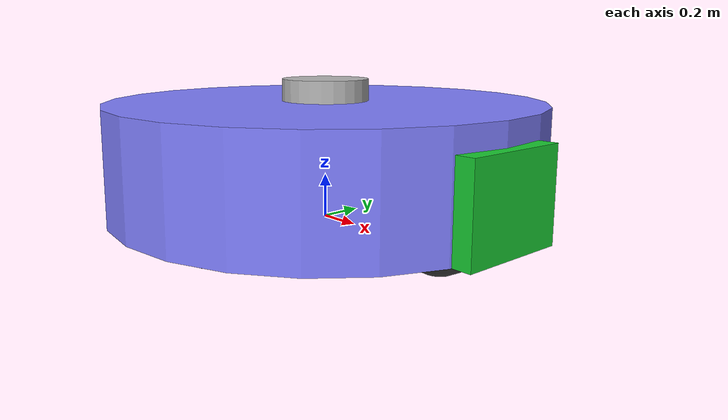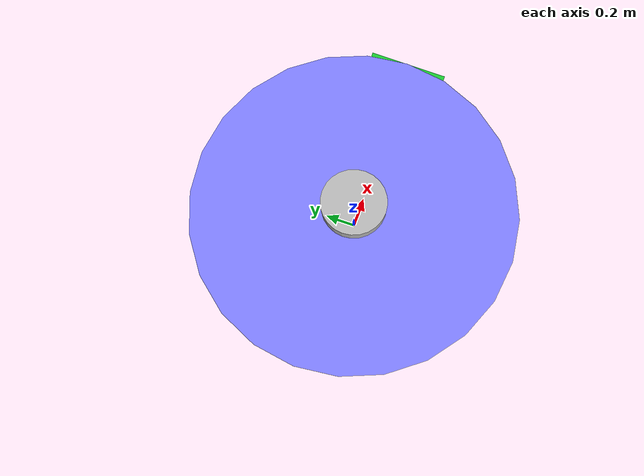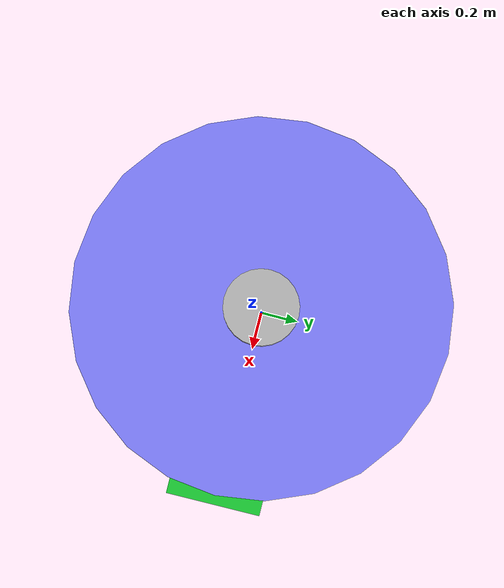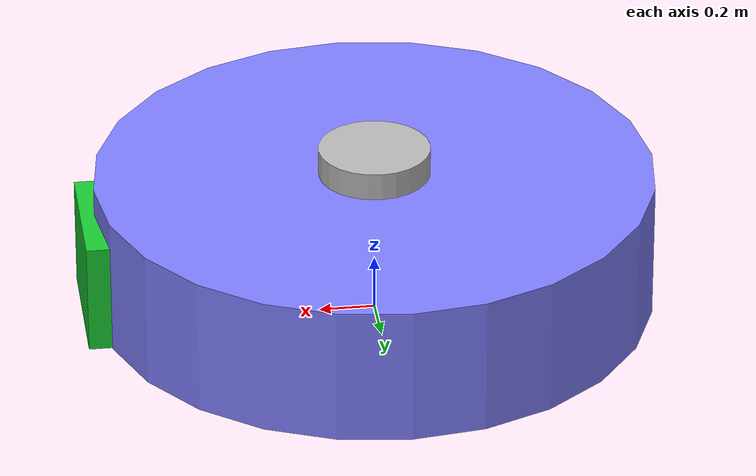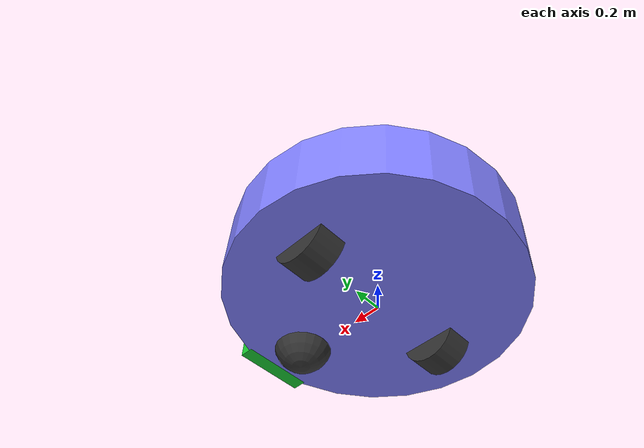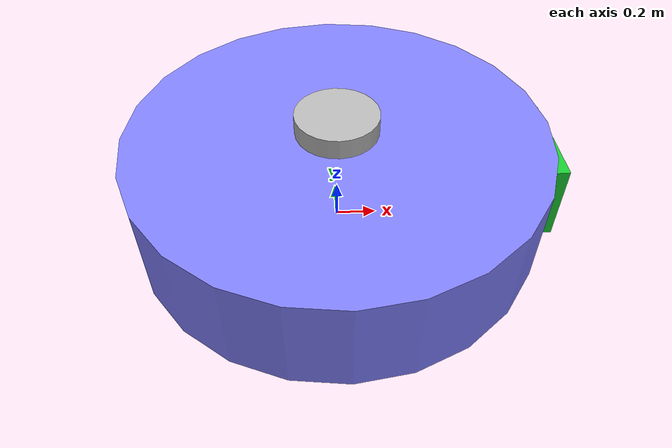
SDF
<?xml version="1.0" ?>
<sdf version="1.8">
    <model name='diff_drive'>
      <link name='chassis'>
        <pose>0. 0. 0.3 0 -0 0</pose>
        <inertial>
          <mass>1.14395</mass>
          <inertia>
            <ixx>0.126164</ixx>
            <ixy>0</ixy>
            <ixz>0</ixz>
            <iyy>0.416519</iyy>
            <iyz>0</iyz>
            <izz>0.481014</izz>
          </inertia>
        </inertial>
        <visual name='visual_chassis'>
          <geometry>
            <cylinder>
              <radius>1</radius>
              <length>0.5</length>
            </cylinder>
          </geometry>
          <material>
            <ambient>0.5 0.5 1.0 1</ambient>
            <diffuse>0.5 0.5 1.0 1</diffuse>
            <specular>0.0 0.0 1.0 1</specular>
          </material>
        </visual>
        <collision name='collision_chassis'>
          <geometry>
            <cylinder>
              <radius>1</radius>
              <length>0.5</length>
            </cylinder>
          </geometry>
        </collision>
      </link>

      <link name='left_wheel'>
        <pose>0. 0.6 0.1 -1.5707 0 0</pose> <!--angles are in radian-->
        <inertial>
          <mass>2</mass>
          <inertia>
            <ixx>0.145833</ixx>
            <ixy>0</ixy>
            <ixz>0</ixz>
            <iyy>0.145833</iyy>
            <iyz>0</iyz>
            <izz>0.125</izz>
          </inertia>
        </inertial>
        <visual name='visual_left_wheel'>
          <geometry>
            <cylinder>
              <radius>0.2</radius>
              <length>0.2</length>
            </cylinder>
          </geometry>
          <material>
            <ambient>0.2 0.2 0.2 1</ambient>
            <diffuse>0.2 0.2 0.2 1</diffuse>
            <specular>0.2 0.2 0.2 1</specular>
          </material>
        </visual>
        <collision name='collision_left_wheel'>
          <geometry>
            <cylinder>
              <radius>0.2</radius>
              <length>0.2</length>
            </cylinder>
          </geometry>
        </collision>
      </link>

      <link name='right_wheel'>
        <pose>0. -0.6 0.1 -1.5707 0 0</pose> <!--angles are in radian-->
        <inertial>
          <mass>2</mass>
          <inertia>
            <ixx>0.145833</ixx>
            <ixy>0</ixy>
            <ixz>0</ixz>
            <iyy>0.145833</iyy>
            <iyz>0</iyz>
            <izz>0.125</izz>
          </inertia>
        </inertial>
        <visual name='visual_right_wheel'>
          <geometry>
            <cylinder>
              <radius>0.2</radius>
              <length>0.2</length>
            </cylinder>
          </geometry>
          <material>
            <ambient>0.2 0.2 0.2 1</ambient>
            <diffuse>0.2 0.2 0.2 1</diffuse>
            <specular>0.2 0.2 0.2 1</specular>
          </material>
        </visual>
        <collision name='collision_right_wheel'>
          <geometry>
            <cylinder>
              <radius>0.2</radius>
              <length>0.2</length>
            </cylinder>
          </geometry>
        </collision>
      </link>

      <!--caster wheel-->
      <link name='caster'>
        <pose>0.7 0 0.1 0 -0 0</pose>
        <inertial>
          <mass>1</mass>
          <inertia>
            <ixx>0.1</ixx>
            <ixy>0</ixy>
            <ixz>0</ixz>
            <iyy>0.1</iyy>
            <iyz>0</iyz>
            <izz>0.1</izz>
          </inertia>
        </inertial>
        <visual name='visual_caster'>
          <geometry>
            <sphere>
              <radius>0.2</radius>
            </sphere>
          </geometry>
          <material>
            <ambient>0.2 0.2 0.2 1</ambient>
            <diffuse>0.2 0.2 0.2 1</diffuse>
            <specular>0.2 0.2 0.2 1</specular>
          </material>
        </visual>
        <collision name='collision_caster'>
          <geometry>
            <sphere>
              <radius>0.2</radius>
            </sphere>
          </geometry>
        </collision>
      </link>

      <link name="lidar_link">
        <pose>0 0 0.55 0 0 0</pose>
        <inertial>
          <mass>0.1</mass>
          <inertia>
            <ixx>0.000166667</ixx>
            <iyy>0.000166667</iyy>
            <izz>0.000166667</izz>
          </inertia>
        </inertial>
        <collision name="collision">
          <geometry>
            <cylinder>
              <radius>0.2</radius>
              <length>0.2</length>
            </cylinder>
          </geometry>
        </collision>
        <visual name="visual">
          <geometry>
            <cylinder>
              <radius>0.2</radius>
              <length>0.2</length>
            </cylinder>
          </geometry>
        </visual>
        <sensor name='gpu_lidar' type='gpu_lidar'>
          <pose>0 0 0 0 0 0</pose>
          <topic>scan</topic>
           <gz_frame_id>diff_drive/lidar_link</gz_frame_id>
          <update_rate>10</update_rate>
          <lidar>
            <scan>
              <horizontal>
                <samples>9</samples> <!-- actually 8000 -->
                <resolution>1</resolution>
                <min_angle>0.</min_angle>
                <max_angle>6.283</max_angle>
              </horizontal>
              <vertical>
                <samples>1</samples>
                <resolution>1</resolution>
                <min_angle>0.0</min_angle>
                <max_angle>0.0</max_angle>
              </vertical>
            </scan>
            <range>
              <min>0.015</min>
              <max>12.0</max>
              <resolution>0.01</resolution>
            </range>
          </lidar>
          <visualize>true</visualize>
        </sensor>
      </link>

      <link name='front_marker'>
        <pose>1. 0. 0.25 0 0 0</pose> <!--angles are in radian-->
        <visual name='visual_front_marker'>
          <geometry>
            <box>
              <size>0.1 0.5 0.4</size>
            </box>
          </geometry>
          <material>
            <ambient>0.1 0.8 0.2 1</ambient>
            <diffuse>0.1 0.8 0.2 1</diffuse>
            <specular>0.1 0.8 0.2 1</specular>
          </material>
        </visual>
      </link>

      <joint name='lidar_joint' type='fixed'>
        <parent>chassis</parent>
        <child>lidar_link</child>
      </joint>

       <joint name='marker_joint' type='fixed'>
        <parent>chassis</parent>
        <child>front_marker</child>
      </joint>

      <joint name='left_wheel_joint' type='revolute'>
        <parent>chassis</parent>
        <child>left_wheel</child>
        <axis>
          <xyz>0 0 1</xyz>
          <limit>
            <lower>-1.79769e+308</lower>
            <upper>1.79769e+308</upper>
          </limit>
        </axis>
      </joint>

      <joint name='right_wheel_joint' type='revolute'>
        <parent>chassis</parent>
        <child>right_wheel</child>
        <axis>
          <xyz>0 0 1</xyz>
          <limit>
            <lower>-1.79769e+308</lower>
            <upper>1.79769e+308</upper>
          </limit>
        </axis>
      </joint>

      <joint name='caster_wheel' type='ball'>
        <parent>chassis</parent>
        <child>caster</child>
      </joint>

      <plugin
        filename="ignition-gazebo-diff-drive-system"
        name="ignition::gazebo::systems::DiffDrive">
        <left_joint>left_wheel_joint</left_joint>
        <right_joint>right_wheel_joint</right_joint>
        <wheel_separation>1.2</wheel_separation>
        <wheel_radius>0.2</wheel_radius>
        <odom_publish_frequency>1</odom_publish_frequency>
        <max_linear_acceleration>1</max_linear_acceleration>
        <min_linear_acceleration>-1</min_linear_acceleration>
        <max_angular_acceleration>2</max_angular_acceleration>
        <min_angular_acceleration>-2</min_angular_acceleration>
        <max_linear_velocity>0.5</max_linear_velocity>
        <min_linear_velocity>-0.5</min_linear_velocity>
        <max_angular_velocity>1</max_angular_velocity>
        <min_angular_velocity>-1</min_angular_velocity>
      </plugin>
    </model>
</sdf>
